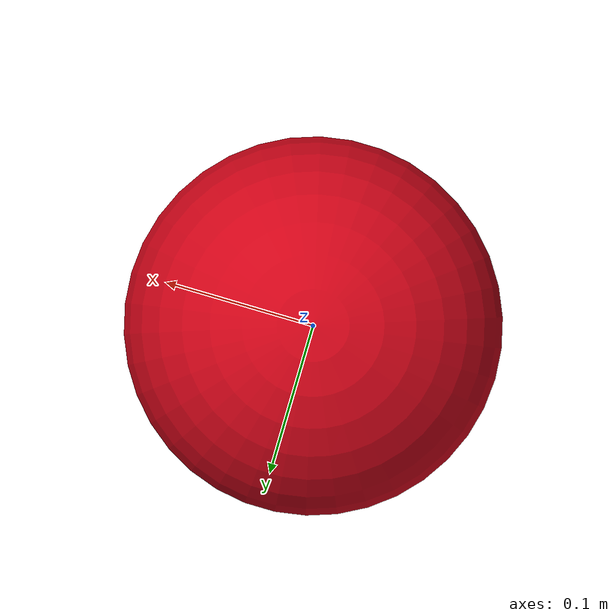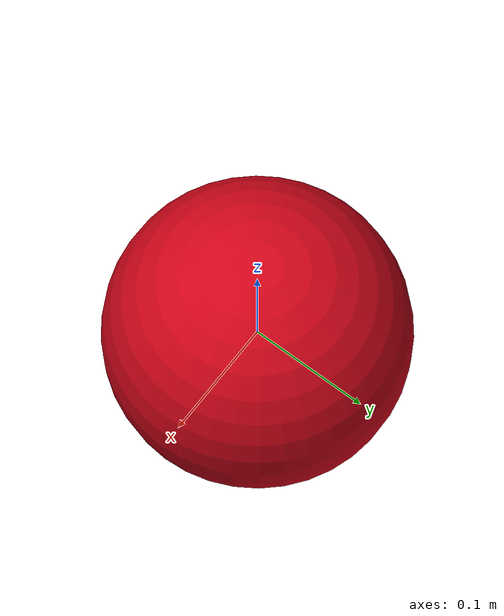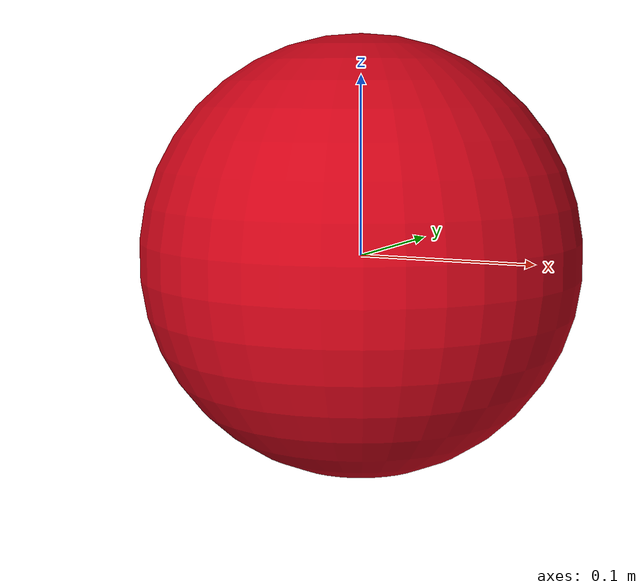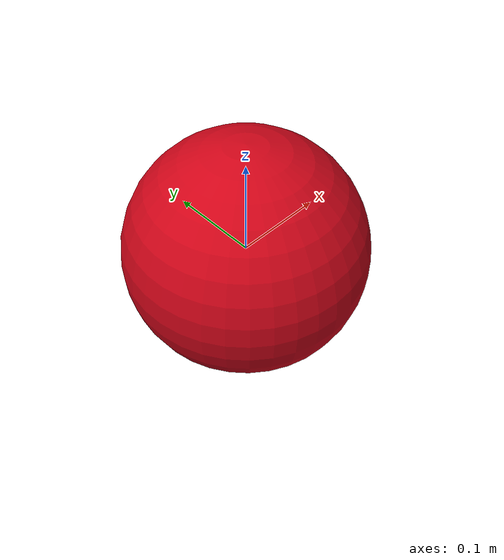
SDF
<?xml version="1.0" ?>
<sdf version="1.5">
  <model name="LaViRIA_redball">
    <link name="link">
      <inertial>
        <pose>0 0 0 0 0 0</pose>
        <mass>0.560</mass>
        <inertia>
          <ixx>0.0033</ixx>
          <iyy>0.0033</iyy>
          <izz>0.0033</izz>
          <ixy>0</ixy>
          <ixz>0</ixz>
        </inertia>
      </inertial>
      <collision name="collision">
        <geometry>
          <mesh>
            <uri>model://LaViRIA_redball/meshes/LaViRIA_redball.dae</uri>
          </mesh>
        </geometry>
      </collision>
      <visual name="visual">
        <geometry>
          <mesh>
            <uri>model://LaViRIA_redball/meshes/LaViRIA_redball.dae</uri>
          </mesh>
        </geometry>
        <material>
          <ambient>0.8 0.014 0.09 1.0</ambient>
          <diffuse>0.8 0.014 0.09 1.0</diffuse>
          <specular>0.8 0.014 0.09 1.0</specular>
          <emissive>0.8 0.014 0.09 1.0</emissive>
        </material>
      </visual>
    </link>
  </model>
</sdf>
